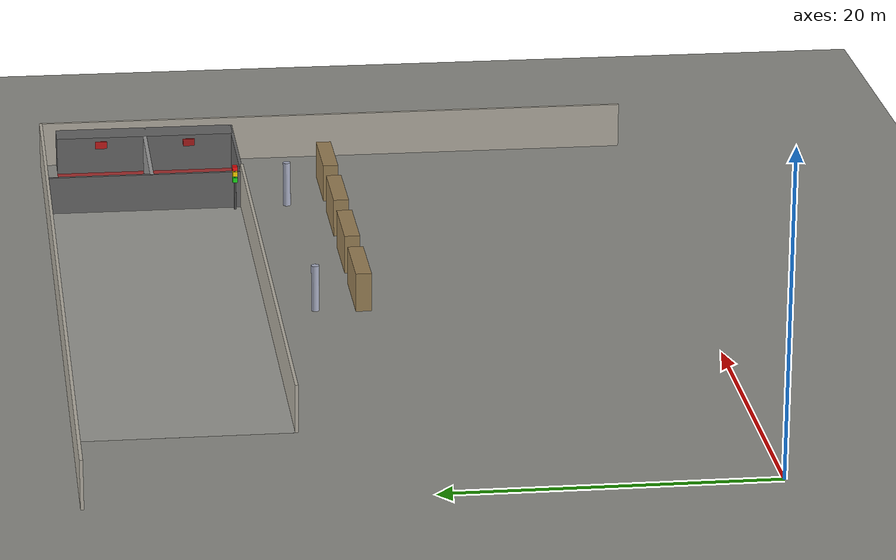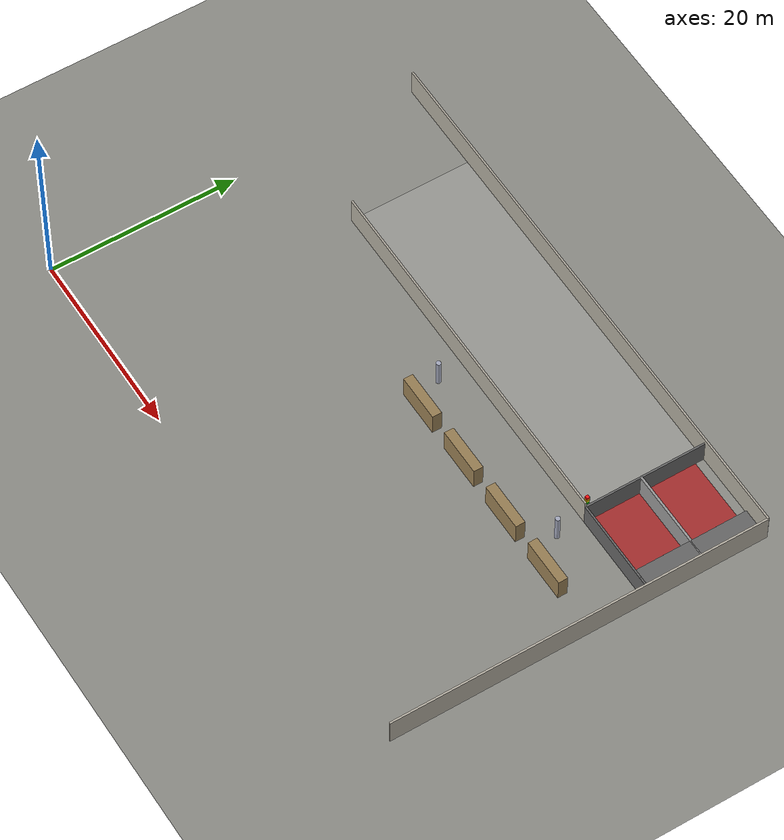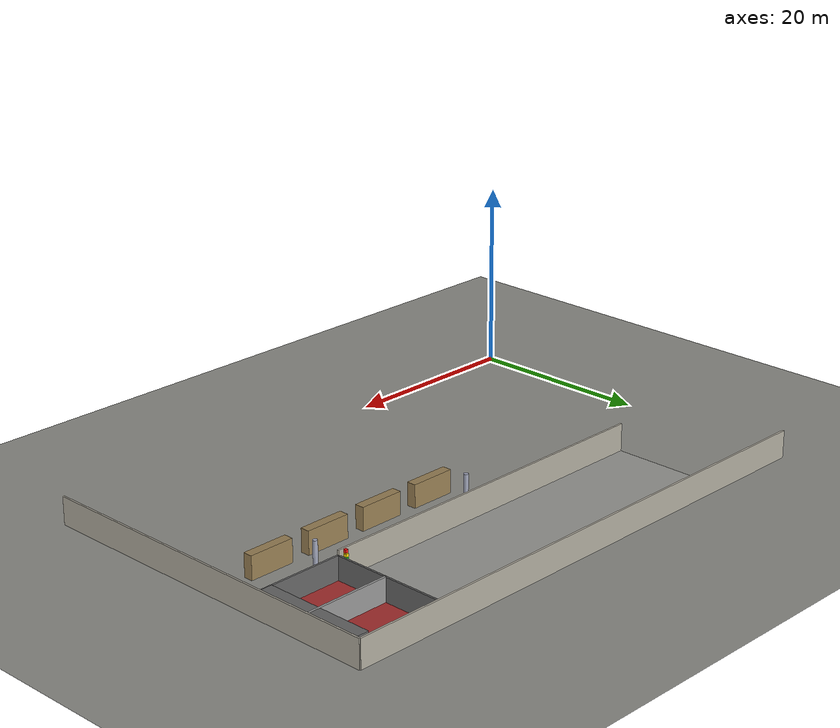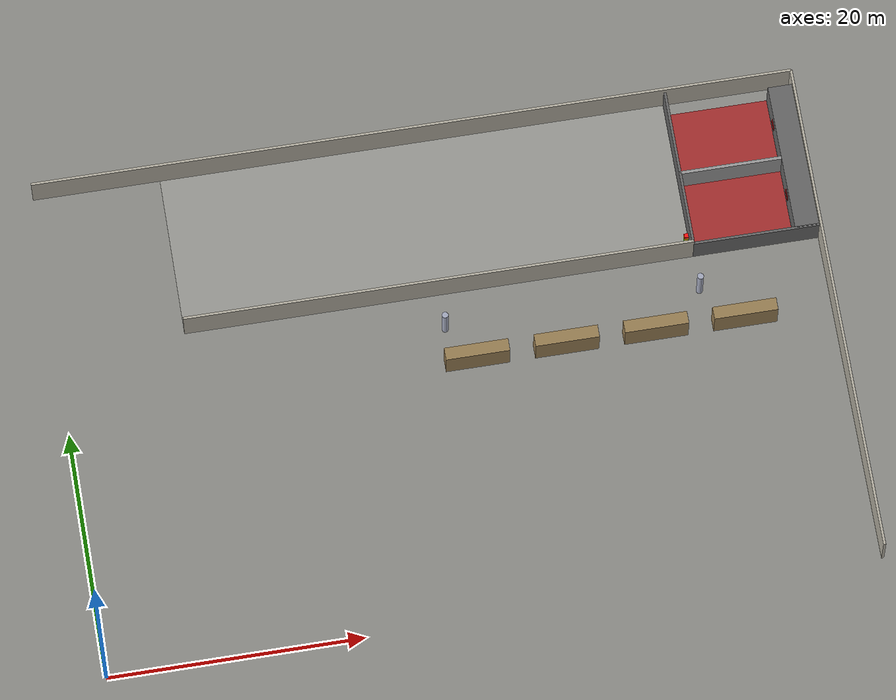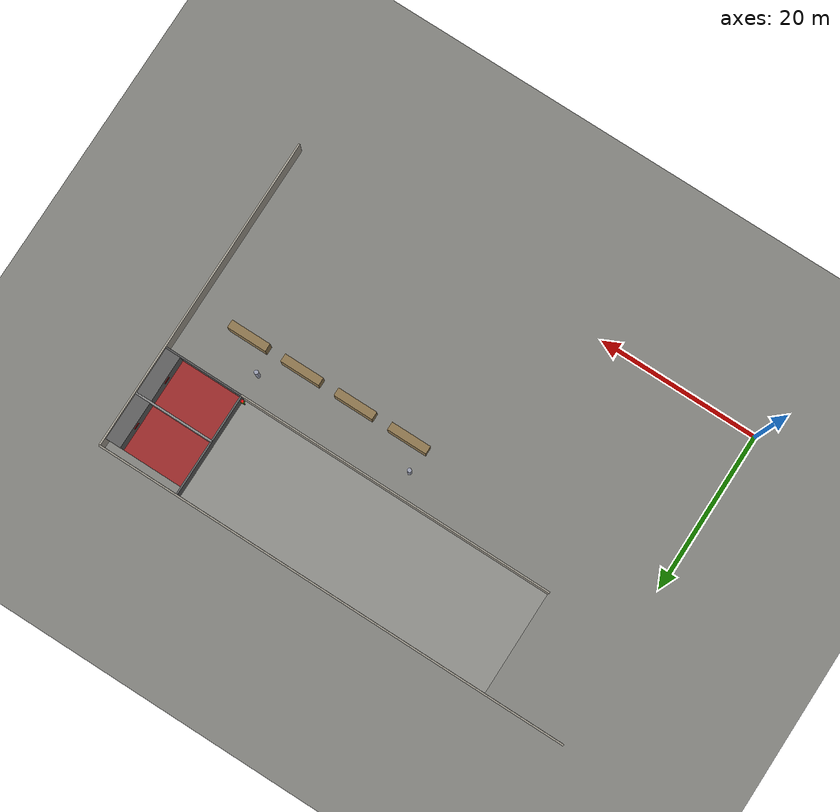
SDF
<sdf version="1.8">
 <world name="warehouse">
  <model name="ground_plane">
   <static>true</static>
   <link name="link">
    <collision name="c">
     <geometry><plane><normal>0 0 1</normal><size>80 60</size></plane></geometry>
     <surface>
      <friction>
       <ode><mu>0.6</mu><mu2>0.5</mu2><slip1>0.003</slip1><slip2>0.003</slip2><fdir1>1 0 0</fdir1></ode>
      </friction>
      <contact><ode><kp>1e6</kp><kd>100.0</kd><max_vel>0.1</max_vel><min_depth>0.001</min_depth></ode></contact>
     </surface>
    </collision>
    <visual name="v">
     <geometry><plane><normal>0 0 1</normal><size>80 60</size></plane></geometry>
     <material><ambient>0.55 0.55 0.53 1</ambient><diffuse>0.55 0.55 0.53 1</diffuse></material>
    </visual>
   </link>
  </model>
  <model name="wall_north">
   <static>true</static>
   <pose>30 40 1.5 0 0 0</pose>
   <link name="link">
    <collision name="c"><geometry><box><size>60 0.2 3.0</size></box></geometry></collision>
    <visual name="v">
     <geometry><box><size>60 0.2 3.0</size></box></geometry>
     <material><ambient>0.70 0.68 0.63 1</ambient><diffuse>0.70 0.68 0.63 1</diffuse></material>
    </visual>
   </link>
  </model>
  <model name="wall_east">
   <static>true</static>
   <pose>60 20 1.5 0 0 0</pose>
   <link name="link">
    <collision name="c"><geometry><box><size>0.2 40 3.0</size></box></geometry></collision>
    <visual name="v">
     <geometry><box><size>0.2 40 3.0</size></box></geometry>
     <material><ambient>0.70 0.68 0.63 1</ambient><diffuse>0.70 0.68 0.63 1</diffuse></material>
    </visual>
   </link>
  </model>
  <model name="col_n2">
   <static>true</static>
   <pose>30 24 1.5 0 0 0</pose>
   <link name="link">
    <collision name="c">
     <geometry><cylinder><radius>0.25</radius><length>3.0</length></cylinder></geometry>
    </collision>
    <visual name="v">
     <geometry><cylinder><radius>0.25</radius><length>3.0</length></cylinder></geometry>
     <material><ambient>0.60 0.62 0.70 1</ambient><diffuse>0.65 0.67 0.75 1</diffuse></material>
    </visual>
   </link>
  </model>
  <model name="col_n3">
   <static>true</static>
   <pose>50 24 1.5 0 0 0</pose>
   <link name="link">
    <collision name="c">
     <geometry><cylinder><radius>0.25</radius><length>3.0</length></cylinder></geometry>
    </collision>
    <visual name="v">
     <geometry><cylinder><radius>0.25</radius><length>3.0</length></cylinder></geometry>
     <material><ambient>0.60 0.62 0.70 1</ambient><diffuse>0.65 0.67 0.75 1</diffuse></material>
    </visual>
   </link>
  </model>
  <model name="unloading_floor">
   <static>true</static>
   <pose>55 33 0.002 0 0 0</pose>
   <link name="link">
    <visual name="v">
     <geometry><box><size>10 12 0.002</size></box></geometry>
     <material><ambient>0.55 0.15 0.15 0.9</ambient><diffuse>0.65 0.18 0.18 0.9</diffuse></material>
    </visual>
   </link>
  </model>
  <model name="dock_east_backwall">
   <static>true</static>
   <pose>59.0 33 1.25 0 0 0</pose>
   <link name="link">
    <collision name="c"><geometry><box><size>2.0 12 2.5</size></box></geometry></collision>
    <visual name="v">
     <geometry><box><size>2.0 12 2.5</size></box></geometry>
     <material><ambient>0.35 0.35 0.35 1</ambient><diffuse>0.40 0.40 0.40 1</diffuse></material>
    </visual>
   </link>
  </model>
  <model name="dock_east_divider">
   <static>true</static>
   <pose>55 33 1.25 0 0 0</pose>
   <link name="link">
    <collision name="c"><geometry><box><size>10 0.25 2.5</size></box></geometry></collision>
    <visual name="v">
     <geometry><box><size>10 0.25 2.5</size></box></geometry>
     <material><ambient>0.55 0.55 0.55 1</ambient><diffuse>0.60 0.60 0.60 1</diffuse></material>
    </visual>
   </link>
  </model>
  <model name="sign_dockA">
   <static>true</static>
   <pose>57.9 36 2.0 0 0 0</pose>
   <link name="link">
    <collision name="c"><geometry><box><size>0.06 0.8 0.5</size></box></geometry></collision>
    <visual name="v">
     <geometry><box><size>0.06 0.8 0.5</size></box></geometry>
     <material><ambient>0.65 0.1 0.1 1</ambient><diffuse>0.75 0.1 0.1 1</diffuse></material>
    </visual>
   </link>
  </model>
  <model name="sign_dockB">
   <static>true</static>
   <pose>57.9 30 2.0 0 0 0</pose>
   <link name="link">
    <collision name="c"><geometry><box><size>0.06 0.8 0.5</size></box></geometry></collision>
    <visual name="v">
     <geometry><box><size>0.06 0.8 0.5</size></box></geometry>
     <material><ambient>0.55 0.1 0.1 1</ambient><diffuse>0.65 0.1 0.1 1</diffuse></material>
    </visual>
   </link>
  </model>
  <model name="corridor_floor">
   <static>true</static>
   <pose>30 33.5 0.002 0 0 0</pose>
   <link name="link">
    <visual name="v">
     <geometry><box><size>40 13 0.002</size></box></geometry>
     <material><ambient>0.58 0.58 0.56 1</ambient><diffuse>0.60 0.60 0.58 1</diffuse></material>
    </visual>
   </link>
  </model>
  <model name="wall_corridor_south">
   <static>true</static>
   <pose>30 27 1.5 0 0 0</pose>
   <link name="link">
    <collision name="c"><geometry><box><size>40 0.2 3.0</size></box></geometry></collision>
    <visual name="v">
     <geometry><box><size>40 0.2 3.0</size></box></geometry>
     <material><ambient>0.70 0.68 0.63 1</ambient><diffuse>0.70 0.68 0.63 1</diffuse></material>
    </visual>
   </link>
  </model>
  <model name="wall_dock_east_south">
   <static>true</static>
   <pose>55 27 1.25 0 0 0</pose>
   <link name="link">
    <collision name="c"><geometry><box><size>10 0.2 2.5</size></box></geometry></collision>
    <visual name="v">
     <geometry><box><size>10 0.2 2.5</size></box></geometry>
     <material><ambient>0.35 0.35 0.35 1</ambient><diffuse>0.40 0.40 0.40 1</diffuse></material>
    </visual>
   </link>
  </model>
  <model name="wall_dock_east_west">
   <static>true</static>
   <pose>50 33.5 1.25 0 0 0</pose>
   <link name="link">
    <collision name="c"><geometry><box><size>0.2 13 2.5</size></box></geometry></collision>
    <visual name="v">
     <geometry><box><size>0.2 13 2.5</size></box></geometry>
     <material><ambient>0.35 0.35 0.35 1</ambient><diffuse>0.40 0.40 0.40 1</diffuse></material>
    </visual>
   </link>
  </model>
  <model name="rack_A4">
   <static>true</static>
   <pose>32 21 1.25 0 0 0</pose>
   <link name="link">
    <collision name="c"><geometry><box><size>5.0 1.0 2.5</size></box></geometry></collision>
    <visual name="v">
     <geometry><box><size>5.0 1.0 2.5</size></box></geometry>
     <material><ambient>0.52 0.42 0.28 1</ambient><diffuse>0.60 0.50 0.33 1</diffuse></material>
    </visual>
   </link>
  </model>
  <model name="rack_A5">
   <static>true</static>
   <pose>39 21 1.25 0 0 0</pose>
   <link name="link">
    <collision name="c"><geometry><box><size>5.0 1.0 2.5</size></box></geometry></collision>
    <visual name="v">
     <geometry><box><size>5.0 1.0 2.5</size></box></geometry>
     <material><ambient>0.52 0.42 0.28 1</ambient><diffuse>0.60 0.50 0.33 1</diffuse></material>
    </visual>
   </link>
  </model>
  <model name="rack_A6">
   <static>true</static>
   <pose>46 21 1.25 0 0 0</pose>
   <link name="link">
    <collision name="c"><geometry><box><size>5.0 1.0 2.5</size></box></geometry></collision>
    <visual name="v">
     <geometry><box><size>5.0 1.0 2.5</size></box></geometry>
     <material><ambient>0.52 0.42 0.28 1</ambient><diffuse>0.60 0.50 0.33 1</diffuse></material>
    </visual>
   </link>
  </model>
  <model name="rack_A7">
   <static>true</static>
   <pose>53 21 1.25 0 0 0</pose>
   <link name="link">
    <collision name="c"><geometry><box><size>5.0 1.0 2.5</size></box></geometry></collision>
    <visual name="v">
     <geometry><box><size>5.0 1.0 2.5</size></box></geometry>
     <material><ambient>0.52 0.42 0.28 1</ambient><diffuse>0.60 0.50 0.33 1</diffuse></material>
    </visual>
   </link>
  </model>
  <model name="tl_e_pole">
   <static>true</static>
   <pose>49.5 27.5 1.4 0 0 0</pose>
   <link name="link">
    <collision name="c">
     <geometry><cylinder><radius>0.07</radius><length>2.8</length></cylinder></geometry>
    </collision>
    <visual name="v">
     <geometry><cylinder><radius>0.07</radius><length>2.8</length></cylinder></geometry>
     <material><ambient>0.22 0.22 0.22 1</ambient><diffuse>0.28 0.28 0.28 1</diffuse></material>
    </visual>
   </link>
  </model>
  <model name="tl_e_red">
   <static>true</static>
   <pose>49.5 27.5 2.9 0 0 0</pose>
   <link name="link">
    <collision name="c"><geometry><box><size>0.32 0.32 0.32</size></box></geometry></collision>
    <visual name="v">
     <geometry><box><size>0.32 0.32 0.32</size></box></geometry>
     <material><ambient>0.9 0.08 0.08 1</ambient><diffuse>1.0 0.08 0.08 1</diffuse></material>
    </visual>
   </link>
  </model>
  <model name="tl_e_yellow">
   <static>true</static>
   <pose>49.5 27.5 2.5 0 0 0</pose>
   <link name="link">
    <collision name="c"><geometry><box><size>0.32 0.32 0.32</size></box></geometry></collision>
    <visual name="v">
     <geometry><box><size>0.32 0.32 0.32</size></box></geometry>
     <material><ambient>0.9 0.75 0.0 1</ambient><diffuse>1.0 0.85 0.0 1</diffuse></material>
    </visual>
   </link>
  </model>
  <model name="tl_e_green">
   <static>true</static>
   <pose>49.5 27.5 2.1 0 0 0</pose>
   <link name="link">
    <collision name="c"><geometry><box><size>0.32 0.32 0.32</size></box></geometry></collision>
    <visual name="v">
     <geometry><box><size>0.32 0.32 0.32</size></box></geometry>
     <material><ambient>0.1 0.8 0.1 1</ambient><diffuse>0.1 0.9 0.1 1</diffuse></material>
    </visual>
   </link>
  </model>
 </world>
</sdf>
